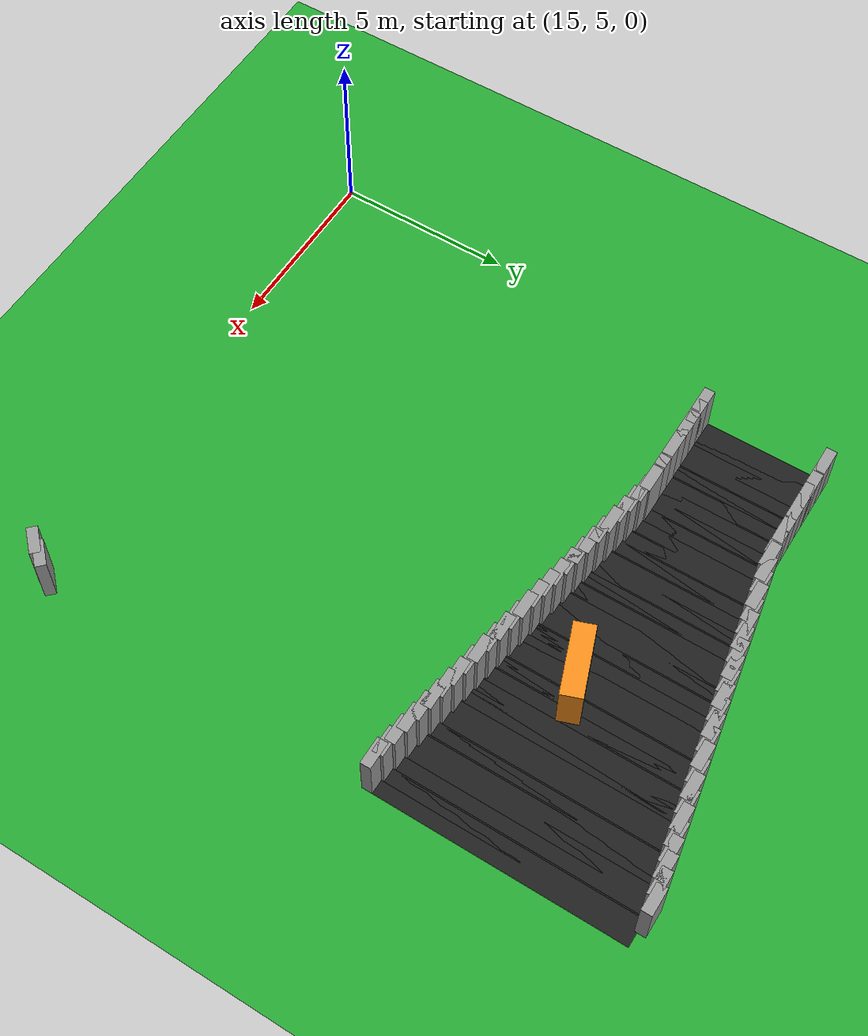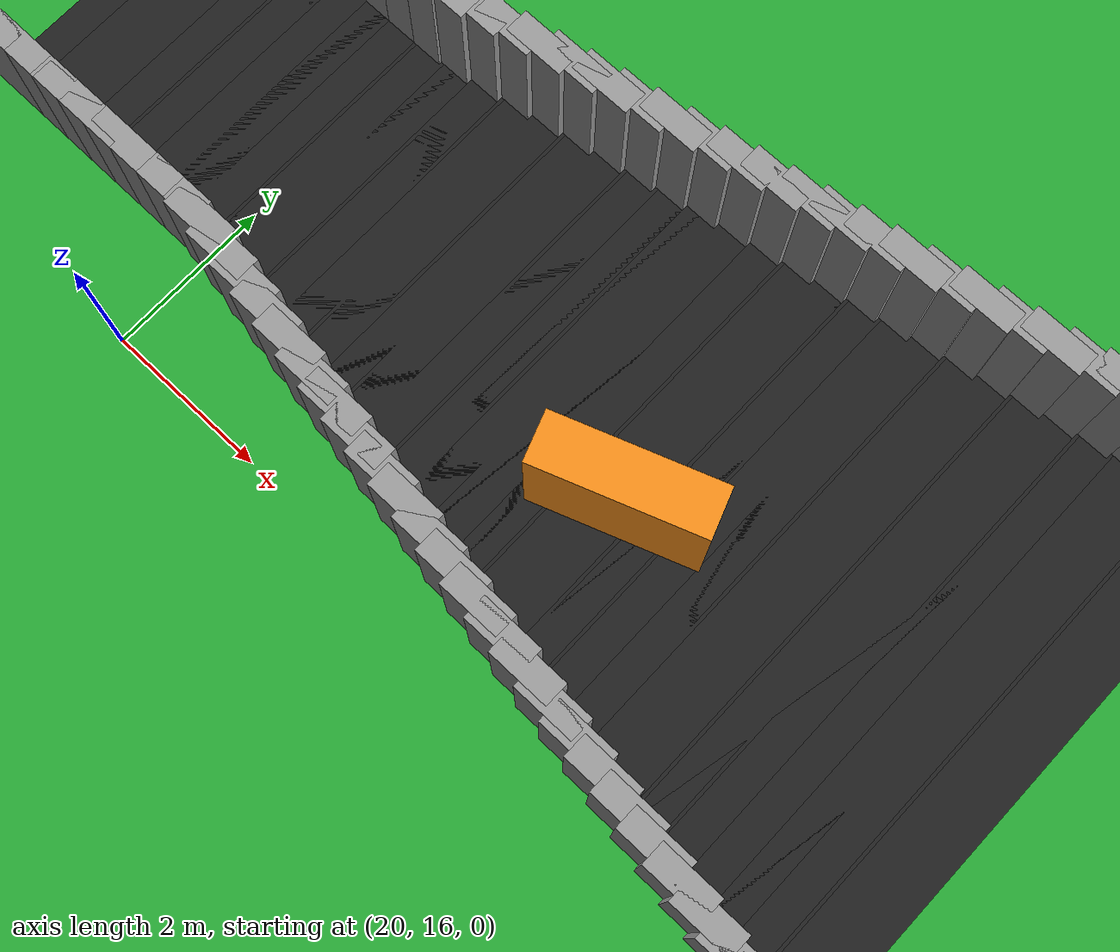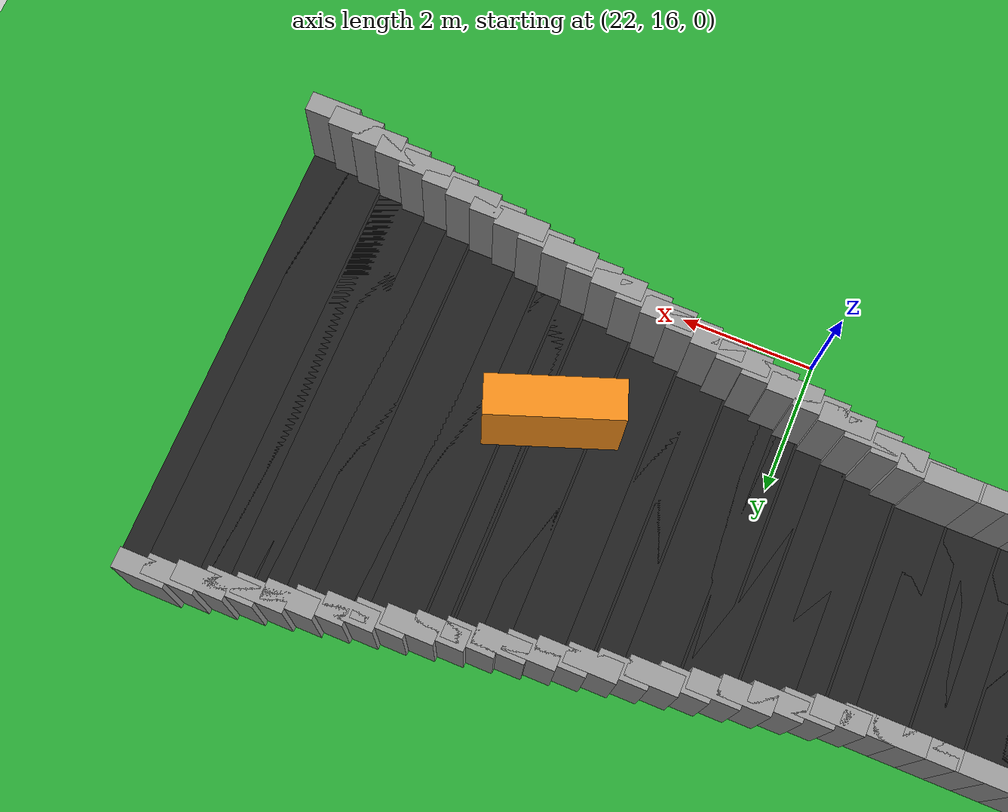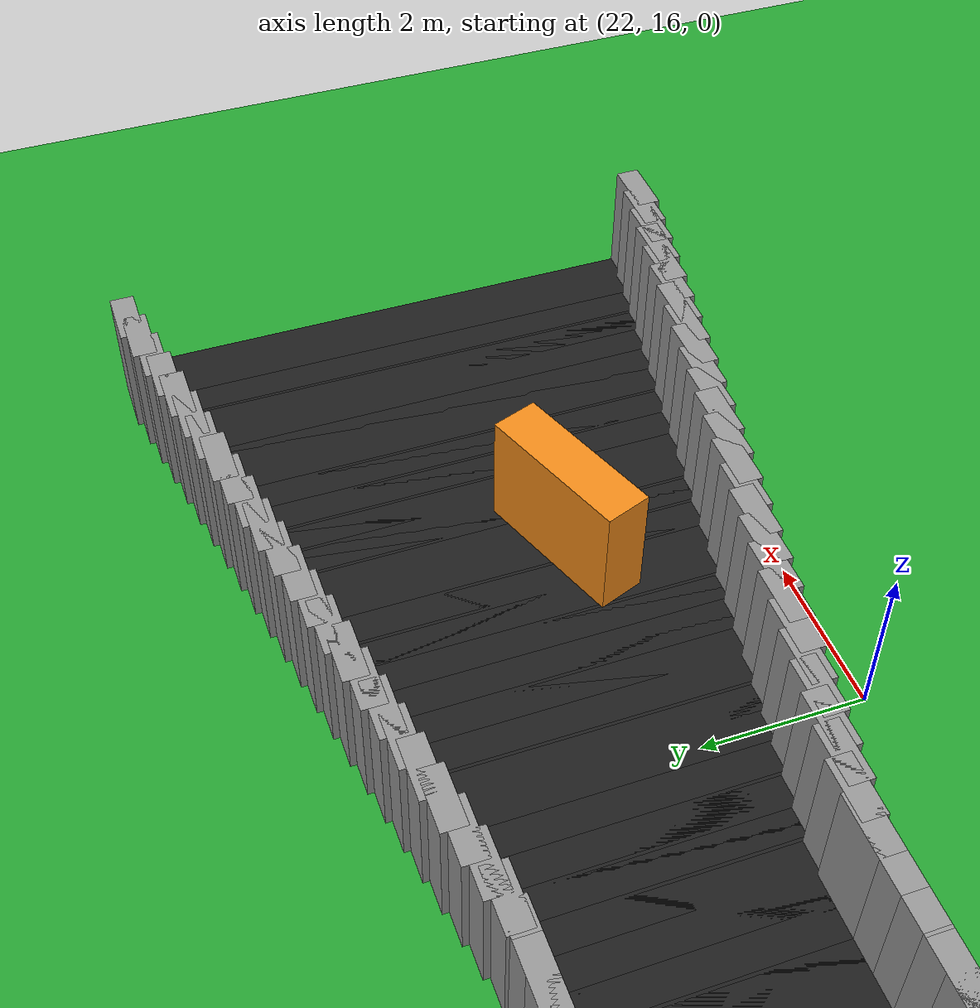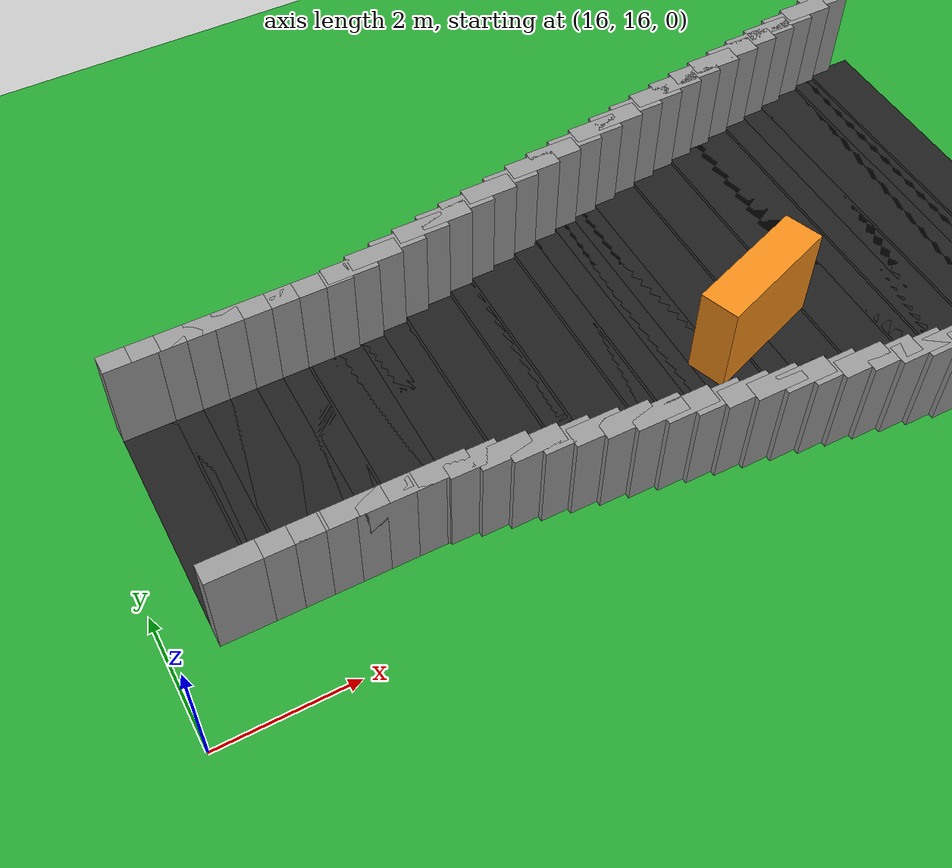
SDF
<sdf version="1.6">
 <world name="obstacle_taper">
  <include><uri>model://sun</uri></include>
  <model name="ground_plane">
   <static>true</static>
   <link name="link">
    <collision name="collision">
     <surface><friction><ode><mu>100</mu><mu2>50</mu2></ode></friction></surface>
     <geometry><plane><normal>0 0 1</normal><size>120 120</size></plane></geometry>
    </collision>
    <visual name="visual">
     <geometry><plane><normal>0 0 1</normal><size>120 120</size></plane></geometry>
     <material>
      <script><uri>file://media/materials/scripts/gazebo.material</uri><name>Gazebo/Green</name></script>
     </material>
    </visual>
   </link>
  </model>
  <model name="curbL_80">
   <static>true</static>
   <pose>29.575 5.274 0.750 0 0 0.78540</pose>
   <link name="link">
    <collision name="collision"><geometry><box><size>0.760 0.300 1.500</size></box></geometry></collision>
    <visual name="visual">
     <geometry><box><size>0.760 0.300 1.500</size></box></geometry>
     <material>
      <script><uri>file://media/materials/scripts/gazebo.material</uri><name>Gazebo/Grey</name></script>
     </material>
    </visual>
   </link>
  </model>
  <model name="curbL_81">
   <static>true</static>
   <pose>29.795 5.620 0.750 0 0 0.78540</pose>
   <link name="link">
    <collision name="collision"><geometry><box><size>0.760 0.300 1.500</size></box></geometry></collision>
    <visual name="visual">
     <geometry><box><size>0.760 0.300 1.500</size></box></geometry>
     <material>
      <script><uri>file://media/materials/scripts/gazebo.material</uri><name>Gazebo/Grey</name></script>
     </material>
    </visual>
   </link>
  </model>
  <model name="asphalt_143">
   <static>true</static>
   <pose>29.820 19.124 0.005 0 0 3.14159</pose>
   <link name="link">
    <visual name="visual">
     <geometry><box><size>0.760 6.922 0.010</size></box></geometry>
     <material>
      <script><uri>file://media/materials/scripts/gazebo.material</uri><name>Gazebo/Black</name></script>
     </material>
    </visual>
   </link>
  </model>
  <model name="curbL_143">
   <static>true</static>
   <pose>29.820 15.513 0.750 0 0 3.14159</pose>
   <link name="link">
    <collision name="collision"><geometry><box><size>0.760 0.300 1.500</size></box></geometry></collision>
    <visual name="visual">
     <geometry><box><size>0.760 0.300 1.500</size></box></geometry>
     <material>
      <script><uri>file://media/materials/scripts/gazebo.material</uri><name>Gazebo/Grey</name></script>
     </material>
    </visual>
   </link>
  </model>
  <model name="asphalt_144">
   <static>true</static>
   <pose>29.420 19.124 0.005 0 0 3.14159</pose>
   <link name="link">
    <visual name="visual">
     <geometry><box><size>0.760 6.770 0.010</size></box></geometry>
     <material>
      <script><uri>file://media/materials/scripts/gazebo.material</uri><name>Gazebo/Black</name></script>
     </material>
    </visual>
   </link>
  </model>
  <model name="curbL_144">
   <static>true</static>
   <pose>29.420 15.589 0.750 0 0 3.14159</pose>
   <link name="link">
    <collision name="collision"><geometry><box><size>0.760 0.300 1.500</size></box></geometry></collision>
    <visual name="visual">
     <geometry><box><size>0.760 0.300 1.500</size></box></geometry>
     <material>
      <script><uri>file://media/materials/scripts/gazebo.material</uri><name>Gazebo/Grey</name></script>
     </material>
    </visual>
   </link>
  </model>
  <model name="curbR_144">
   <static>true</static>
   <pose>29.420 22.659 0.750 0 0 3.14159</pose>
   <link name="link">
    <collision name="collision"><geometry><box><size>0.760 0.300 1.500</size></box></geometry></collision>
    <visual name="visual">
     <geometry><box><size>0.760 0.300 1.500</size></box></geometry>
     <material>
      <script><uri>file://media/materials/scripts/gazebo.material</uri><name>Gazebo/Grey</name></script>
     </material>
    </visual>
   </link>
  </model>
  <model name="asphalt_145">
   <static>true</static>
   <pose>29.020 19.124 0.005 0 0 3.14159</pose>
   <link name="link">
    <visual name="visual">
     <geometry><box><size>0.760 6.618 0.010</size></box></geometry>
     <material>
      <script><uri>file://media/materials/scripts/gazebo.material</uri><name>Gazebo/Black</name></script>
     </material>
    </visual>
   </link>
  </model>
  <model name="curbL_145">
   <static>true</static>
   <pose>29.020 15.665 0.750 0 0 3.14159</pose>
   <link name="link">
    <collision name="collision"><geometry><box><size>0.760 0.300 1.500</size></box></geometry></collision>
    <visual name="visual">
     <geometry><box><size>0.760 0.300 1.500</size></box></geometry>
     <material>
      <script><uri>file://media/materials/scripts/gazebo.material</uri><name>Gazebo/Grey</name></script>
     </material>
    </visual>
   </link>
  </model>
  <model name="curbR_145">
   <static>true</static>
   <pose>29.020 22.583 0.750 0 0 3.14159</pose>
   <link name="link">
    <collision name="collision"><geometry><box><size>0.760 0.300 1.500</size></box></geometry></collision>
    <visual name="visual">
     <geometry><box><size>0.760 0.300 1.500</size></box></geometry>
     <material>
      <script><uri>file://media/materials/scripts/gazebo.material</uri><name>Gazebo/Grey</name></script>
     </material>
    </visual>
   </link>
  </model>
  <model name="asphalt_146">
   <static>true</static>
   <pose>28.620 19.124 0.005 0 0 3.14159</pose>
   <link name="link">
    <visual name="visual">
     <geometry><box><size>0.760 6.466 0.010</size></box></geometry>
     <material>
      <script><uri>file://media/materials/scripts/gazebo.material</uri><name>Gazebo/Black</name></script>
     </material>
    </visual>
   </link>
  </model>
  <model name="curbL_146">
   <static>true</static>
   <pose>28.620 15.741 0.750 0 0 3.14159</pose>
   <link name="link">
    <collision name="collision"><geometry><box><size>0.760 0.300 1.500</size></box></geometry></collision>
    <visual name="visual">
     <geometry><box><size>0.760 0.300 1.500</size></box></geometry>
     <material>
      <script><uri>file://media/materials/scripts/gazebo.material</uri><name>Gazebo/Grey</name></script>
     </material>
    </visual>
   </link>
  </model>
  <model name="curbR_146">
   <static>true</static>
   <pose>28.620 22.507 0.750 0 0 3.14159</pose>
   <link name="link">
    <collision name="collision"><geometry><box><size>0.760 0.300 1.500</size></box></geometry></collision>
    <visual name="visual">
     <geometry><box><size>0.760 0.300 1.500</size></box></geometry>
     <material>
      <script><uri>file://media/materials/scripts/gazebo.material</uri><name>Gazebo/Grey</name></script>
     </material>
    </visual>
   </link>
  </model>
  <model name="asphalt_147">
   <static>true</static>
   <pose>28.220 19.124 0.005 0 0 3.14159</pose>
   <link name="link">
    <visual name="visual">
     <geometry><box><size>0.760 6.314 0.010</size></box></geometry>
     <material>
      <script><uri>file://media/materials/scripts/gazebo.material</uri><name>Gazebo/Black</name></script>
     </material>
    </visual>
   </link>
  </model>
  <model name="curbL_147">
   <static>true</static>
   <pose>28.220 15.817 0.750 0 0 3.14159</pose>
   <link name="link">
    <collision name="collision"><geometry><box><size>0.760 0.300 1.500</size></box></geometry></collision>
    <visual name="visual">
     <geometry><box><size>0.760 0.300 1.500</size></box></geometry>
     <material>
      <script><uri>file://media/materials/scripts/gazebo.material</uri><name>Gazebo/Grey</name></script>
     </material>
    </visual>
   </link>
  </model>
  <model name="curbR_147">
   <static>true</static>
   <pose>28.220 22.431 0.750 0 0 3.14159</pose>
   <link name="link">
    <collision name="collision"><geometry><box><size>0.760 0.300 1.500</size></box></geometry></collision>
    <visual name="visual">
     <geometry><box><size>0.760 0.300 1.500</size></box></geometry>
     <material>
      <script><uri>file://media/materials/scripts/gazebo.material</uri><name>Gazebo/Grey</name></script>
     </material>
    </visual>
   </link>
  </model>
  <model name="asphalt_148">
   <static>true</static>
   <pose>27.820 19.124 0.005 0 0 3.14159</pose>
   <link name="link">
    <visual name="visual">
     <geometry><box><size>0.760 6.162 0.010</size></box></geometry>
     <material>
      <script><uri>file://media/materials/scripts/gazebo.material</uri><name>Gazebo/Black</name></script>
     </material>
    </visual>
   </link>
  </model>
  <model name="curbL_148">
   <static>true</static>
   <pose>27.820 15.893 0.750 0 0 3.14159</pose>
   <link name="link">
    <collision name="collision"><geometry><box><size>0.760 0.300 1.500</size></box></geometry></collision>
    <visual name="visual">
     <geometry><box><size>0.760 0.300 1.500</size></box></geometry>
     <material>
      <script><uri>file://media/materials/scripts/gazebo.material</uri><name>Gazebo/Grey</name></script>
     </material>
    </visual>
   </link>
  </model>
  <model name="curbR_148">
   <static>true</static>
   <pose>27.820 22.355 0.750 0 0 3.14159</pose>
   <link name="link">
    <collision name="collision"><geometry><box><size>0.760 0.300 1.500</size></box></geometry></collision>
    <visual name="visual">
     <geometry><box><size>0.760 0.300 1.500</size></box></geometry>
     <material>
      <script><uri>file://media/materials/scripts/gazebo.material</uri><name>Gazebo/Grey</name></script>
     </material>
    </visual>
   </link>
  </model>
  <model name="asphalt_149">
   <static>true</static>
   <pose>27.420 19.124 0.005 0 0 3.14159</pose>
   <link name="link">
    <visual name="visual">
     <geometry><box><size>0.760 6.010 0.010</size></box></geometry>
     <material>
      <script><uri>file://media/materials/scripts/gazebo.material</uri><name>Gazebo/Black</name></script>
     </material>
    </visual>
   </link>
  </model>
  <model name="curbL_149">
   <static>true</static>
   <pose>27.420 15.969 0.750 0 0 3.14159</pose>
   <link name="link">
    <collision name="collision"><geometry><box><size>0.760 0.300 1.500</size></box></geometry></collision>
    <visual name="visual">
     <geometry><box><size>0.760 0.300 1.500</size></box></geometry>
     <material>
      <script><uri>file://media/materials/scripts/gazebo.material</uri><name>Gazebo/Grey</name></script>
     </material>
    </visual>
   </link>
  </model>
  <model name="curbR_149">
   <static>true</static>
   <pose>27.420 22.279 0.750 0 0 3.14159</pose>
   <link name="link">
    <collision name="collision"><geometry><box><size>0.760 0.300 1.500</size></box></geometry></collision>
    <visual name="visual">
     <geometry><box><size>0.760 0.300 1.500</size></box></geometry>
     <material>
      <script><uri>file://media/materials/scripts/gazebo.material</uri><name>Gazebo/Grey</name></script>
     </material>
    </visual>
   </link>
  </model>
  <model name="asphalt_150">
   <static>true</static>
   <pose>27.020 19.124 0.005 0 0 3.14159</pose>
   <link name="link">
    <visual name="visual">
     <geometry><box><size>0.760 5.858 0.010</size></box></geometry>
     <material>
      <script><uri>file://media/materials/scripts/gazebo.material</uri><name>Gazebo/Black</name></script>
     </material>
    </visual>
   </link>
  </model>
  <model name="curbL_150">
   <static>true</static>
   <pose>27.020 16.045 0.750 0 0 3.14159</pose>
   <link name="link">
    <collision name="collision"><geometry><box><size>0.760 0.300 1.500</size></box></geometry></collision>
    <visual name="visual">
     <geometry><box><size>0.760 0.300 1.500</size></box></geometry>
     <material>
      <script><uri>file://media/materials/scripts/gazebo.material</uri><name>Gazebo/Grey</name></script>
     </material>
    </visual>
   </link>
  </model>
  <model name="curbR_150">
   <static>true</static>
   <pose>27.020 22.203 0.750 0 0 3.14159</pose>
   <link name="link">
    <collision name="collision"><geometry><box><size>0.760 0.300 1.500</size></box></geometry></collision>
    <visual name="visual">
     <geometry><box><size>0.760 0.300 1.500</size></box></geometry>
     <material>
      <script><uri>file://media/materials/scripts/gazebo.material</uri><name>Gazebo/Grey</name></script>
     </material>
    </visual>
   </link>
  </model>
  <model name="asphalt_151">
   <static>true</static>
   <pose>26.620 19.124 0.005 0 0 3.14159</pose>
   <link name="link">
    <visual name="visual">
     <geometry><box><size>0.760 5.706 0.010</size></box></geometry>
     <material>
      <script><uri>file://media/materials/scripts/gazebo.material</uri><name>Gazebo/Black</name></script>
     </material>
    </visual>
   </link>
  </model>
  <model name="curbL_151">
   <static>true</static>
   <pose>26.620 16.121 0.750 0 0 3.14159</pose>
   <link name="link">
    <collision name="collision"><geometry><box><size>0.760 0.300 1.500</size></box></geometry></collision>
    <visual name="visual">
     <geometry><box><size>0.760 0.300 1.500</size></box></geometry>
     <material>
      <script><uri>file://media/materials/scripts/gazebo.material</uri><name>Gazebo/Grey</name></script>
     </material>
    </visual>
   </link>
  </model>
  <model name="curbR_151">
   <static>true</static>
   <pose>26.620 22.127 0.750 0 0 3.14159</pose>
   <link name="link">
    <collision name="collision"><geometry><box><size>0.760 0.300 1.500</size></box></geometry></collision>
    <visual name="visual">
     <geometry><box><size>0.760 0.300 1.500</size></box></geometry>
     <material>
      <script><uri>file://media/materials/scripts/gazebo.material</uri><name>Gazebo/Grey</name></script>
     </material>
    </visual>
   </link>
  </model>
  <model name="asphalt_152">
   <static>true</static>
   <pose>26.220 19.124 0.005 0 0 3.14159</pose>
   <link name="link">
    <visual name="visual">
     <geometry><box><size>0.760 5.554 0.010</size></box></geometry>
     <material>
      <script><uri>file://media/materials/scripts/gazebo.material</uri><name>Gazebo/Black</name></script>
     </material>
    </visual>
   </link>
  </model>
  <model name="curbL_152">
   <static>true</static>
   <pose>26.220 16.197 0.750 0 0 3.14159</pose>
   <link name="link">
    <collision name="collision"><geometry><box><size>0.760 0.300 1.500</size></box></geometry></collision>
    <visual name="visual">
     <geometry><box><size>0.760 0.300 1.500</size></box></geometry>
     <material>
      <script><uri>file://media/materials/scripts/gazebo.material</uri><name>Gazebo/Grey</name></script>
     </material>
    </visual>
   </link>
  </model>
  <model name="curbR_152">
   <static>true</static>
   <pose>26.220 22.051 0.750 0 0 3.14159</pose>
   <link name="link">
    <collision name="collision"><geometry><box><size>0.760 0.300 1.500</size></box></geometry></collision>
    <visual name="visual">
     <geometry><box><size>0.760 0.300 1.500</size></box></geometry>
     <material>
      <script><uri>file://media/materials/scripts/gazebo.material</uri><name>Gazebo/Grey</name></script>
     </material>
    </visual>
   </link>
  </model>
  <model name="asphalt_153">
   <static>true</static>
   <pose>25.820 19.124 0.005 0 0 3.14159</pose>
   <link name="link">
    <visual name="visual">
     <geometry><box><size>0.760 5.402 0.010</size></box></geometry>
     <material>
      <script><uri>file://media/materials/scripts/gazebo.material</uri><name>Gazebo/Black</name></script>
     </material>
    </visual>
   </link>
  </model>
  <model name="curbL_153">
   <static>true</static>
   <pose>25.820 16.273 0.750 0 0 3.14159</pose>
   <link name="link">
    <collision name="collision"><geometry><box><size>0.760 0.300 1.500</size></box></geometry></collision>
    <visual name="visual">
     <geometry><box><size>0.760 0.300 1.500</size></box></geometry>
     <material>
      <script><uri>file://media/materials/scripts/gazebo.material</uri><name>Gazebo/Grey</name></script>
     </material>
    </visual>
   </link>
  </model>
  <model name="curbR_153">
   <static>true</static>
   <pose>25.820 21.975 0.750 0 0 3.14159</pose>
   <link name="link">
    <collision name="collision"><geometry><box><size>0.760 0.300 1.500</size></box></geometry></collision>
    <visual name="visual">
     <geometry><box><size>0.760 0.300 1.500</size></box></geometry>
     <material>
      <script><uri>file://media/materials/scripts/gazebo.material</uri><name>Gazebo/Grey</name></script>
     </material>
    </visual>
   </link>
  </model>
  <model name="asphalt_154">
   <static>true</static>
   <pose>25.420 19.124 0.005 0 0 3.14159</pose>
   <link name="link">
    <visual name="visual">
     <geometry><box><size>0.760 5.250 0.010</size></box></geometry>
     <material>
      <script><uri>file://media/materials/scripts/gazebo.material</uri><name>Gazebo/Black</name></script>
     </material>
    </visual>
   </link>
  </model>
  <model name="curbL_154">
   <static>true</static>
   <pose>25.420 16.349 0.750 0 0 3.14159</pose>
   <link name="link">
    <collision name="collision"><geometry><box><size>0.760 0.300 1.500</size></box></geometry></collision>
    <visual name="visual">
     <geometry><box><size>0.760 0.300 1.500</size></box></geometry>
     <material>
      <script><uri>file://media/materials/scripts/gazebo.material</uri><name>Gazebo/Grey</name></script>
     </material>
    </visual>
   </link>
  </model>
  <model name="curbR_154">
   <static>true</static>
   <pose>25.420 21.899 0.750 0 0 3.14159</pose>
   <link name="link">
    <collision name="collision"><geometry><box><size>0.760 0.300 1.500</size></box></geometry></collision>
    <visual name="visual">
     <geometry><box><size>0.760 0.300 1.500</size></box></geometry>
     <material>
      <script><uri>file://media/materials/scripts/gazebo.material</uri><name>Gazebo/Grey</name></script>
     </material>
    </visual>
   </link>
  </model>
  <model name="asphalt_155">
   <static>true</static>
   <pose>25.020 19.124 0.005 0 0 3.14159</pose>
   <link name="link">
    <visual name="visual">
     <geometry><box><size>0.760 5.098 0.010</size></box></geometry>
     <material>
      <script><uri>file://media/materials/scripts/gazebo.material</uri><name>Gazebo/Black</name></script>
     </material>
    </visual>
   </link>
  </model>
  <model name="curbL_155">
   <static>true</static>
   <pose>25.020 16.425 0.750 0 0 3.14159</pose>
   <link name="link">
    <collision name="collision"><geometry><box><size>0.760 0.300 1.500</size></box></geometry></collision>
    <visual name="visual">
     <geometry><box><size>0.760 0.300 1.500</size></box></geometry>
     <material>
      <script><uri>file://media/materials/scripts/gazebo.material</uri><name>Gazebo/Grey</name></script>
     </material>
    </visual>
   </link>
  </model>
  <model name="curbR_155">
   <static>true</static>
   <pose>25.020 21.823 0.750 0 0 3.14159</pose>
   <link name="link">
    <collision name="collision"><geometry><box><size>0.760 0.300 1.500</size></box></geometry></collision>
    <visual name="visual">
     <geometry><box><size>0.760 0.300 1.500</size></box></geometry>
     <material>
      <script><uri>file://media/materials/scripts/gazebo.material</uri><name>Gazebo/Grey</name></script>
     </material>
    </visual>
   </link>
  </model>
  <model name="asphalt_156">
   <static>true</static>
   <pose>24.620 19.124 0.005 0 0 3.14159</pose>
   <link name="link">
    <visual name="visual">
     <geometry><box><size>0.760 4.946 0.010</size></box></geometry>
     <material>
      <script><uri>file://media/materials/scripts/gazebo.material</uri><name>Gazebo/Black</name></script>
     </material>
    </visual>
   </link>
  </model>
  <model name="curbL_156">
   <static>true</static>
   <pose>24.620 16.501 0.750 0 0 3.14159</pose>
   <link name="link">
    <collision name="collision"><geometry><box><size>0.760 0.300 1.500</size></box></geometry></collision>
    <visual name="visual">
     <geometry><box><size>0.760 0.300 1.500</size></box></geometry>
     <material>
      <script><uri>file://media/materials/scripts/gazebo.material</uri><name>Gazebo/Grey</name></script>
     </material>
    </visual>
   </link>
  </model>
  <model name="curbR_156">
   <static>true</static>
   <pose>24.620 21.747 0.750 0 0 3.14159</pose>
   <link name="link">
    <collision name="collision"><geometry><box><size>0.760 0.300 1.500</size></box></geometry></collision>
    <visual name="visual">
     <geometry><box><size>0.760 0.300 1.500</size></box></geometry>
     <material>
      <script><uri>file://media/materials/scripts/gazebo.material</uri><name>Gazebo/Grey</name></script>
     </material>
    </visual>
   </link>
  </model>
  <model name="asphalt_157">
   <static>true</static>
   <pose>24.220 19.124 0.005 0 0 3.14159</pose>
   <link name="link">
    <visual name="visual">
     <geometry><box><size>0.760 4.794 0.010</size></box></geometry>
     <material>
      <script><uri>file://media/materials/scripts/gazebo.material</uri><name>Gazebo/Black</name></script>
     </material>
    </visual>
   </link>
  </model>
  <model name="curbL_157">
   <static>true</static>
   <pose>24.220 16.577 0.750 0 0 3.14159</pose>
   <link name="link">
    <collision name="collision"><geometry><box><size>0.760 0.300 1.500</size></box></geometry></collision>
    <visual name="visual">
     <geometry><box><size>0.760 0.300 1.500</size></box></geometry>
     <material>
      <script><uri>file://media/materials/scripts/gazebo.material</uri><name>Gazebo/Grey</name></script>
     </material>
    </visual>
   </link>
  </model>
  <model name="curbR_157">
   <static>true</static>
   <pose>24.220 21.671 0.750 0 0 3.14159</pose>
   <link name="link">
    <collision name="collision"><geometry><box><size>0.760 0.300 1.500</size></box></geometry></collision>
    <visual name="visual">
     <geometry><box><size>0.760 0.300 1.500</size></box></geometry>
     <material>
      <script><uri>file://media/materials/scripts/gazebo.material</uri><name>Gazebo/Grey</name></script>
     </material>
    </visual>
   </link>
  </model>
  <model name="asphalt_158">
   <static>true</static>
   <pose>23.820 19.124 0.005 0 0 3.14159</pose>
   <link name="link">
    <visual name="visual">
     <geometry><box><size>0.760 4.642 0.010</size></box></geometry>
     <material>
      <script><uri>file://media/materials/scripts/gazebo.material</uri><name>Gazebo/Black</name></script>
     </material>
    </visual>
   </link>
  </model>
  <model name="curbL_158">
   <static>true</static>
   <pose>23.820 16.653 0.750 0 0 3.14159</pose>
   <link name="link">
    <collision name="collision"><geometry><box><size>0.760 0.300 1.500</size></box></geometry></collision>
    <visual name="visual">
     <geometry><box><size>0.760 0.300 1.500</size></box></geometry>
     <material>
      <script><uri>file://media/materials/scripts/gazebo.material</uri><name>Gazebo/Grey</name></script>
     </material>
    </visual>
   </link>
  </model>
  <model name="curbR_158">
   <static>true</static>
   <pose>23.820 21.595 0.750 0 0 3.14159</pose>
   <link name="link">
    <collision name="collision"><geometry><box><size>0.760 0.300 1.500</size></box></geometry></collision>
    <visual name="visual">
     <geometry><box><size>0.760 0.300 1.500</size></box></geometry>
     <material>
      <script><uri>file://media/materials/scripts/gazebo.material</uri><name>Gazebo/Grey</name></script>
     </material>
    </visual>
   </link>
  </model>
  <model name="asphalt_159">
   <static>true</static>
   <pose>23.420 19.124 0.005 0 0 3.14159</pose>
   <link name="link">
    <visual name="visual">
     <geometry><box><size>0.760 4.490 0.010</size></box></geometry>
     <material>
      <script><uri>file://media/materials/scripts/gazebo.material</uri><name>Gazebo/Black</name></script>
     </material>
    </visual>
   </link>
  </model>
  <model name="curbL_159">
   <static>true</static>
   <pose>23.420 16.729 0.750 0 0 3.14159</pose>
   <link name="link">
    <collision name="collision"><geometry><box><size>0.760 0.300 1.500</size></box></geometry></collision>
    <visual name="visual">
     <geometry><box><size>0.760 0.300 1.500</size></box></geometry>
     <material>
      <script><uri>file://media/materials/scripts/gazebo.material</uri><name>Gazebo/Grey</name></script>
     </material>
    </visual>
   </link>
  </model>
  <model name="curbR_159">
   <static>true</static>
   <pose>23.420 21.519 0.750 0 0 3.14159</pose>
   <link name="link">
    <collision name="collision"><geometry><box><size>0.760 0.300 1.500</size></box></geometry></collision>
    <visual name="visual">
     <geometry><box><size>0.760 0.300 1.500</size></box></geometry>
     <material>
      <script><uri>file://media/materials/scripts/gazebo.material</uri><name>Gazebo/Grey</name></script>
     </material>
    </visual>
   </link>
  </model>
  <model name="asphalt_160">
   <static>true</static>
   <pose>23.020 19.124 0.005 0 0 3.14159</pose>
   <link name="link">
    <visual name="visual">
     <geometry><box><size>0.760 4.338 0.010</size></box></geometry>
     <material>
      <script><uri>file://media/materials/scripts/gazebo.material</uri><name>Gazebo/Black</name></script>
     </material>
    </visual>
   </link>
  </model>
  <model name="curbL_160">
   <static>true</static>
   <pose>23.020 16.805 0.750 0 0 3.14159</pose>
   <link name="link">
    <collision name="collision"><geometry><box><size>0.760 0.300 1.500</size></box></geometry></collision>
    <visual name="visual">
     <geometry><box><size>0.760 0.300 1.500</size></box></geometry>
     <material>
      <script><uri>file://media/materials/scripts/gazebo.material</uri><name>Gazebo/Grey</name></script>
     </material>
    </visual>
   </link>
  </model>
  <model name="curbR_160">
   <static>true</static>
   <pose>23.020 21.443 0.750 0 0 3.14159</pose>
   <link name="link">
    <collision name="collision"><geometry><box><size>0.760 0.300 1.500</size></box></geometry></collision>
    <visual name="visual">
     <geometry><box><size>0.760 0.300 1.500</size></box></geometry>
     <material>
      <script><uri>file://media/materials/scripts/gazebo.material</uri><name>Gazebo/Grey</name></script>
     </material>
    </visual>
   </link>
  </model>
  <model name="asphalt_161">
   <static>true</static>
   <pose>22.620 19.124 0.005 0 0 3.14159</pose>
   <link name="link">
    <visual name="visual">
     <geometry><box><size>0.760 4.186 0.010</size></box></geometry>
     <material>
      <script><uri>file://media/materials/scripts/gazebo.material</uri><name>Gazebo/Black</name></script>
     </material>
    </visual>
   </link>
  </model>
  <model name="curbL_161">
   <static>true</static>
   <pose>22.620 16.881 0.750 0 0 3.14159</pose>
   <link name="link">
    <collision name="collision"><geometry><box><size>0.760 0.300 1.500</size></box></geometry></collision>
    <visual name="visual">
     <geometry><box><size>0.760 0.300 1.500</size></box></geometry>
     <material>
      <script><uri>file://media/materials/scripts/gazebo.material</uri><name>Gazebo/Grey</name></script>
     </material>
    </visual>
   </link>
  </model>
  <model name="curbR_161">
   <static>true</static>
   <pose>22.620 21.367 0.750 0 0 3.14159</pose>
   <link name="link">
    <collision name="collision"><geometry><box><size>0.760 0.300 1.500</size></box></geometry></collision>
    <visual name="visual">
     <geometry><box><size>0.760 0.300 1.500</size></box></geometry>
     <material>
      <script><uri>file://media/materials/scripts/gazebo.material</uri><name>Gazebo/Grey</name></script>
     </material>
    </visual>
   </link>
  </model>
  <model name="asphalt_162">
   <static>true</static>
   <pose>22.220 19.124 0.005 0 0 3.14159</pose>
   <link name="link">
    <visual name="visual">
     <geometry><box><size>0.760 4.034 0.010</size></box></geometry>
     <material>
      <script><uri>file://media/materials/scripts/gazebo.material</uri><name>Gazebo/Black</name></script>
     </material>
    </visual>
   </link>
  </model>
  <model name="curbL_162">
   <static>true</static>
   <pose>22.220 16.957 0.750 0 0 3.14159</pose>
   <link name="link">
    <collision name="collision"><geometry><box><size>0.760 0.300 1.500</size></box></geometry></collision>
    <visual name="visual">
     <geometry><box><size>0.760 0.300 1.500</size></box></geometry>
     <material>
      <script><uri>file://media/materials/scripts/gazebo.material</uri><name>Gazebo/Grey</name></script>
     </material>
    </visual>
   </link>
  </model>
  <model name="curbR_162">
   <static>true</static>
   <pose>22.220 21.291 0.750 0 0 3.14159</pose>
   <link name="link">
    <collision name="collision"><geometry><box><size>0.760 0.300 1.500</size></box></geometry></collision>
    <visual name="visual">
     <geometry><box><size>0.760 0.300 1.500</size></box></geometry>
     <material>
      <script><uri>file://media/materials/scripts/gazebo.material</uri><name>Gazebo/Grey</name></script>
     </material>
    </visual>
   </link>
  </model>
  <model name="asphalt_163">
   <static>true</static>
   <pose>21.820 19.124 0.005 0 0 3.14159</pose>
   <link name="link">
    <visual name="visual">
     <geometry><box><size>0.760 3.882 0.010</size></box></geometry>
     <material>
      <script><uri>file://media/materials/scripts/gazebo.material</uri><name>Gazebo/Black</name></script>
     </material>
    </visual>
   </link>
  </model>
  <model name="curbL_163">
   <static>true</static>
   <pose>21.820 17.033 0.750 0 0 3.14159</pose>
   <link name="link">
    <collision name="collision"><geometry><box><size>0.760 0.300 1.500</size></box></geometry></collision>
    <visual name="visual">
     <geometry><box><size>0.760 0.300 1.500</size></box></geometry>
     <material>
      <script><uri>file://media/materials/scripts/gazebo.material</uri><name>Gazebo/Grey</name></script>
     </material>
    </visual>
   </link>
  </model>
  <model name="curbR_163">
   <static>true</static>
   <pose>21.820 21.215 0.750 0 0 3.14159</pose>
   <link name="link">
    <collision name="collision"><geometry><box><size>0.760 0.300 1.500</size></box></geometry></collision>
    <visual name="visual">
     <geometry><box><size>0.760 0.300 1.500</size></box></geometry>
     <material>
      <script><uri>file://media/materials/scripts/gazebo.material</uri><name>Gazebo/Grey</name></script>
     </material>
    </visual>
   </link>
  </model>
  <model name="asphalt_164">
   <static>true</static>
   <pose>21.420 19.124 0.005 0 0 3.14159</pose>
   <link name="link">
    <visual name="visual">
     <geometry><box><size>0.760 3.730 0.010</size></box></geometry>
     <material>
      <script><uri>file://media/materials/scripts/gazebo.material</uri><name>Gazebo/Black</name></script>
     </material>
    </visual>
   </link>
  </model>
  <model name="curbL_164">
   <static>true</static>
   <pose>21.420 17.109 0.750 0 0 3.14159</pose>
   <link name="link">
    <collision name="collision"><geometry><box><size>0.760 0.300 1.500</size></box></geometry></collision>
    <visual name="visual">
     <geometry><box><size>0.760 0.300 1.500</size></box></geometry>
     <material>
      <script><uri>file://media/materials/scripts/gazebo.material</uri><name>Gazebo/Grey</name></script>
     </material>
    </visual>
   </link>
  </model>
  <model name="curbR_164">
   <static>true</static>
   <pose>21.420 21.139 0.750 0 0 3.14159</pose>
   <link name="link">
    <collision name="collision"><geometry><box><size>0.760 0.300 1.500</size></box></geometry></collision>
    <visual name="visual">
     <geometry><box><size>0.760 0.300 1.500</size></box></geometry>
     <material>
      <script><uri>file://media/materials/scripts/gazebo.material</uri><name>Gazebo/Grey</name></script>
     </material>
    </visual>
   </link>
  </model>
  <model name="asphalt_165">
   <static>true</static>
   <pose>21.020 19.124 0.005 0 0 3.14159</pose>
   <link name="link">
    <visual name="visual">
     <geometry><box><size>0.760 3.578 0.010</size></box></geometry>
     <material>
      <script><uri>file://media/materials/scripts/gazebo.material</uri><name>Gazebo/Black</name></script>
     </material>
    </visual>
   </link>
  </model>
  <model name="curbL_165">
   <static>true</static>
   <pose>21.020 17.185 0.750 0 0 3.14159</pose>
   <link name="link">
    <collision name="collision"><geometry><box><size>0.760 0.300 1.500</size></box></geometry></collision>
    <visual name="visual">
     <geometry><box><size>0.760 0.300 1.500</size></box></geometry>
     <material>
      <script><uri>file://media/materials/scripts/gazebo.material</uri><name>Gazebo/Grey</name></script>
     </material>
    </visual>
   </link>
  </model>
  <model name="curbR_165">
   <static>true</static>
   <pose>21.020 21.063 0.750 0 0 3.14159</pose>
   <link name="link">
    <collision name="collision"><geometry><box><size>0.760 0.300 1.500</size></box></geometry></collision>
    <visual name="visual">
     <geometry><box><size>0.760 0.300 1.500</size></box></geometry>
     <material>
      <script><uri>file://media/materials/scripts/gazebo.material</uri><name>Gazebo/Grey</name></script>
     </material>
    </visual>
   </link>
  </model>
  <model name="asphalt_166">
   <static>true</static>
   <pose>20.620 19.124 0.005 0 0 3.14159</pose>
   <link name="link">
    <visual name="visual">
     <geometry><box><size>0.760 3.426 0.010</size></box></geometry>
     <material>
      <script><uri>file://media/materials/scripts/gazebo.material</uri><name>Gazebo/Black</name></script>
     </material>
    </visual>
   </link>
  </model>
  <model name="curbL_166">
   <static>true</static>
   <pose>20.620 17.261 0.750 0 0 3.14159</pose>
   <link name="link">
    <collision name="collision"><geometry><box><size>0.760 0.300 1.500</size></box></geometry></collision>
    <visual name="visual">
     <geometry><box><size>0.760 0.300 1.500</size></box></geometry>
     <material>
      <script><uri>file://media/materials/scripts/gazebo.material</uri><name>Gazebo/Grey</name></script>
     </material>
    </visual>
   </link>
  </model>
  <model name="curbR_166">
   <static>true</static>
   <pose>20.620 20.987 0.750 0 0 3.14159</pose>
   <link name="link">
    <collision name="collision"><geometry><box><size>0.760 0.300 1.500</size></box></geometry></collision>
    <visual name="visual">
     <geometry><box><size>0.760 0.300 1.500</size></box></geometry>
     <material>
      <script><uri>file://media/materials/scripts/gazebo.material</uri><name>Gazebo/Grey</name></script>
     </material>
    </visual>
   </link>
  </model>
  <model name="asphalt_167">
   <static>true</static>
   <pose>20.220 19.124 0.005 0 0 3.14159</pose>
   <link name="link">
    <visual name="visual">
     <geometry><box><size>0.760 3.274 0.010</size></box></geometry>
     <material>
      <script><uri>file://media/materials/scripts/gazebo.material</uri><name>Gazebo/Black</name></script>
     </material>
    </visual>
   </link>
  </model>
  <model name="curbL_167">
   <static>true</static>
   <pose>20.220 17.337 0.750 0 0 3.14159</pose>
   <link name="link">
    <collision name="collision"><geometry><box><size>0.760 0.300 1.500</size></box></geometry></collision>
    <visual name="visual">
     <geometry><box><size>0.760 0.300 1.500</size></box></geometry>
     <material>
      <script><uri>file://media/materials/scripts/gazebo.material</uri><name>Gazebo/Grey</name></script>
     </material>
    </visual>
   </link>
  </model>
  <model name="curbR_167">
   <static>true</static>
   <pose>20.220 20.911 0.750 0 0 3.14159</pose>
   <link name="link">
    <collision name="collision"><geometry><box><size>0.760 0.300 1.500</size></box></geometry></collision>
    <visual name="visual">
     <geometry><box><size>0.760 0.300 1.500</size></box></geometry>
     <material>
      <script><uri>file://media/materials/scripts/gazebo.material</uri><name>Gazebo/Grey</name></script>
     </material>
    </visual>
   </link>
  </model>
  <model name="asphalt_168">
   <static>true</static>
   <pose>19.820 19.124 0.005 0 0 3.14159</pose>
   <link name="link">
    <visual name="visual">
     <geometry><box><size>0.760 3.200 0.010</size></box></geometry>
     <material>
      <script><uri>file://media/materials/scripts/gazebo.material</uri><name>Gazebo/Black</name></script>
     </material>
    </visual>
   </link>
  </model>
  <model name="curbL_168">
   <static>true</static>
   <pose>19.820 17.374 0.750 0 0 3.14159</pose>
   <link name="link">
    <collision name="collision"><geometry><box><size>0.760 0.300 1.500</size></box></geometry></collision>
    <visual name="visual">
     <geometry><box><size>0.760 0.300 1.500</size></box></geometry>
     <material>
      <script><uri>file://media/materials/scripts/gazebo.material</uri><name>Gazebo/Grey</name></script>
     </material>
    </visual>
   </link>
  </model>
  <model name="curbR_168">
   <static>true</static>
   <pose>19.820 20.874 0.750 0 0 3.14159</pose>
   <link name="link">
    <collision name="collision"><geometry><box><size>0.760 0.300 1.500</size></box></geometry></collision>
    <visual name="visual">
     <geometry><box><size>0.760 0.300 1.500</size></box></geometry>
     <material>
      <script><uri>file://media/materials/scripts/gazebo.material</uri><name>Gazebo/Grey</name></script>
     </material>
    </visual>
   </link>
  </model>
  <model name="asphalt_169">
   <static>true</static>
   <pose>19.420 19.124 0.005 0 0 3.14159</pose>
   <link name="link">
    <visual name="visual">
     <geometry><box><size>0.760 3.200 0.010</size></box></geometry>
     <material>
      <script><uri>file://media/materials/scripts/gazebo.material</uri><name>Gazebo/Black</name></script>
     </material>
    </visual>
   </link>
  </model>
  <model name="curbL_169">
   <static>true</static>
   <pose>19.420 17.374 0.750 0 0 3.14159</pose>
   <link name="link">
    <collision name="collision"><geometry><box><size>0.760 0.300 1.500</size></box></geometry></collision>
    <visual name="visual">
     <geometry><box><size>0.760 0.300 1.500</size></box></geometry>
     <material>
      <script><uri>file://media/materials/scripts/gazebo.material</uri><name>Gazebo/Grey</name></script>
     </material>
    </visual>
   </link>
  </model>
  <model name="curbR_169">
   <static>true</static>
   <pose>19.420 20.874 0.750 0 0 3.14159</pose>
   <link name="link">
    <collision name="collision"><geometry><box><size>0.760 0.300 1.500</size></box></geometry></collision>
    <visual name="visual">
     <geometry><box><size>0.760 0.300 1.500</size></box></geometry>
     <material>
      <script><uri>file://media/materials/scripts/gazebo.material</uri><name>Gazebo/Grey</name></script>
     </material>
    </visual>
   </link>
  </model>
  <model name="asphalt_170">
   <static>true</static>
   <pose>19.020 19.124 0.005 0 0 3.14159</pose>
   <link name="link">
    <visual name="visual">
     <geometry><box><size>0.760 3.200 0.010</size></box></geometry>
     <material>
      <script><uri>file://media/materials/scripts/gazebo.material</uri><name>Gazebo/Black</name></script>
     </material>
    </visual>
   </link>
  </model>
  <model name="curbL_170">
   <static>true</static>
   <pose>19.020 17.374 0.750 0 0 3.14159</pose>
   <link name="link">
    <collision name="collision"><geometry><box><size>0.760 0.300 1.500</size></box></geometry></collision>
    <visual name="visual">
     <geometry><box><size>0.760 0.300 1.500</size></box></geometry>
     <material>
      <script><uri>file://media/materials/scripts/gazebo.material</uri><name>Gazebo/Grey</name></script>
     </material>
    </visual>
   </link>
  </model>
  <model name="curbR_170">
   <static>true</static>
   <pose>19.020 20.874 0.750 0 0 3.14159</pose>
   <link name="link">
    <collision name="collision"><geometry><box><size>0.760 0.300 1.500</size></box></geometry></collision>
    <visual name="visual">
     <geometry><box><size>0.760 0.300 1.500</size></box></geometry>
     <material>
      <script><uri>file://media/materials/scripts/gazebo.material</uri><name>Gazebo/Grey</name></script>
     </material>
    </visual>
   </link>
  </model>
  <model name="asphalt_171">
   <static>true</static>
   <pose>18.620 19.124 0.005 0 0 3.14159</pose>
   <link name="link">
    <visual name="visual">
     <geometry><box><size>0.760 3.200 0.010</size></box></geometry>
     <material>
      <script><uri>file://media/materials/scripts/gazebo.material</uri><name>Gazebo/Black</name></script>
     </material>
    </visual>
   </link>
  </model>
  <model name="curbL_171">
   <static>true</static>
   <pose>18.620 17.374 0.750 0 0 3.14159</pose>
   <link name="link">
    <collision name="collision"><geometry><box><size>0.760 0.300 1.500</size></box></geometry></collision>
    <visual name="visual">
     <geometry><box><size>0.760 0.300 1.500</size></box></geometry>
     <material>
      <script><uri>file://media/materials/scripts/gazebo.material</uri><name>Gazebo/Grey</name></script>
     </material>
    </visual>
   </link>
  </model>
  <model name="curbR_171">
   <static>true</static>
   <pose>18.620 20.874 0.750 0 0 3.14159</pose>
   <link name="link">
    <collision name="collision"><geometry><box><size>0.760 0.300 1.500</size></box></geometry></collision>
    <visual name="visual">
     <geometry><box><size>0.760 0.300 1.500</size></box></geometry>
     <material>
      <script><uri>file://media/materials/scripts/gazebo.material</uri><name>Gazebo/Grey</name></script>
     </material>
    </visual>
   </link>
  </model>
  <model name="asphalt_172">
   <static>true</static>
   <pose>18.220 19.124 0.005 0 0 3.14159</pose>
   <link name="link">
    <visual name="visual">
     <geometry><box><size>0.760 3.200 0.010</size></box></geometry>
     <material>
      <script><uri>file://media/materials/scripts/gazebo.material</uri><name>Gazebo/Black</name></script>
     </material>
    </visual>
   </link>
  </model>
  <model name="curbL_172">
   <static>true</static>
   <pose>18.220 17.374 0.750 0 0 3.14159</pose>
   <link name="link">
    <collision name="collision"><geometry><box><size>0.760 0.300 1.500</size></box></geometry></collision>
    <visual name="visual">
     <geometry><box><size>0.760 0.300 1.500</size></box></geometry>
     <material>
      <script><uri>file://media/materials/scripts/gazebo.material</uri><name>Gazebo/Grey</name></script>
     </material>
    </visual>
   </link>
  </model>
  <model name="curbR_172">
   <static>true</static>
   <pose>18.220 20.874 0.750 0 0 3.14159</pose>
   <link name="link">
    <collision name="collision"><geometry><box><size>0.760 0.300 1.500</size></box></geometry></collision>
    <visual name="visual">
     <geometry><box><size>0.760 0.300 1.500</size></box></geometry>
     <material>
      <script><uri>file://media/materials/scripts/gazebo.material</uri><name>Gazebo/Grey</name></script>
     </material>
    </visual>
   </link>
  </model>
  <model name="asphalt_173">
   <static>true</static>
   <pose>17.820 19.124 0.005 0 0 3.14159</pose>
   <link name="link">
    <visual name="visual">
     <geometry><box><size>0.760 3.200 0.010</size></box></geometry>
     <material>
      <script><uri>file://media/materials/scripts/gazebo.material</uri><name>Gazebo/Black</name></script>
     </material>
    </visual>
   </link>
  </model>
  <model name="curbL_173">
   <static>true</static>
   <pose>17.820 17.374 0.750 0 0 3.14159</pose>
   <link name="link">
    <collision name="collision"><geometry><box><size>0.760 0.300 1.500</size></box></geometry></collision>
    <visual name="visual">
     <geometry><box><size>0.760 0.300 1.500</size></box></geometry>
     <material>
      <script><uri>file://media/materials/scripts/gazebo.material</uri><name>Gazebo/Grey</name></script>
     </material>
    </visual>
   </link>
  </model>
  <model name="curbR_173">
   <static>true</static>
   <pose>17.820 20.874 0.750 0 0 3.14159</pose>
   <link name="link">
    <collision name="collision"><geometry><box><size>0.760 0.300 1.500</size></box></geometry></collision>
    <visual name="visual">
     <geometry><box><size>0.760 0.300 1.500</size></box></geometry>
     <material>
      <script><uri>file://media/materials/scripts/gazebo.material</uri><name>Gazebo/Grey</name></script>
     </material>
    </visual>
   </link>
  </model>
  <model name="asphalt_174">
   <static>true</static>
   <pose>17.420 19.124 0.005 0 0 3.14159</pose>
   <link name="link">
    <visual name="visual">
     <geometry><box><size>0.760 3.200 0.010</size></box></geometry>
     <material>
      <script><uri>file://media/materials/scripts/gazebo.material</uri><name>Gazebo/Black</name></script>
     </material>
    </visual>
   </link>
  </model>
  <model name="curbL_174">
   <static>true</static>
   <pose>17.420 17.374 0.750 0 0 3.14159</pose>
   <link name="link">
    <collision name="collision"><geometry><box><size>0.760 0.300 1.500</size></box></geometry></collision>
    <visual name="visual">
     <geometry><box><size>0.760 0.300 1.500</size></box></geometry>
     <material>
      <script><uri>file://media/materials/scripts/gazebo.material</uri><name>Gazebo/Grey</name></script>
     </material>
    </visual>
   </link>
  </model>
  <model name="curbR_174">
   <static>true</static>
   <pose>17.420 20.874 0.750 0 0 3.14159</pose>
   <link name="link">
    <collision name="collision"><geometry><box><size>0.760 0.300 1.500</size></box></geometry></collision>
    <visual name="visual">
     <geometry><box><size>0.760 0.300 1.500</size></box></geometry>
     <material>
      <script><uri>file://media/materials/scripts/gazebo.material</uri><name>Gazebo/Grey</name></script>
     </material>
    </visual>
   </link>
  </model>
  <model name="asphalt_175">
   <static>true</static>
   <pose>17.020 19.124 0.005 0 0 3.14159</pose>
   <link name="link">
    <visual name="visual">
     <geometry><box><size>0.760 3.200 0.010</size></box></geometry>
     <material>
      <script><uri>file://media/materials/scripts/gazebo.material</uri><name>Gazebo/Black</name></script>
     </material>
    </visual>
   </link>
  </model>
  <model name="curbL_175">
   <static>true</static>
   <pose>17.020 17.374 0.750 0 0 3.14159</pose>
   <link name="link">
    <collision name="collision"><geometry><box><size>0.760 0.300 1.500</size></box></geometry></collision>
    <visual name="visual">
     <geometry><box><size>0.760 0.300 1.500</size></box></geometry>
     <material>
      <script><uri>file://media/materials/scripts/gazebo.material</uri><name>Gazebo/Grey</name></script>
     </material>
    </visual>
   </link>
  </model>
  <model name="curbR_175">
   <static>true</static>
   <pose>17.020 20.874 0.750 0 0 3.14159</pose>
   <link name="link">
    <collision name="collision"><geometry><box><size>0.760 0.300 1.500</size></box></geometry></collision>
    <visual name="visual">
     <geometry><box><size>0.760 0.300 1.500</size></box></geometry>
     <material>
      <script><uri>file://media/materials/scripts/gazebo.material</uri><name>Gazebo/Grey</name></script>
     </material>
    </visual>
   </link>
  </model>
  <model name="obs_4">
   <static>true</static>
   <pose>25.226 18.324 0.750 0 0 3.49066</pose>
   <link name="link">
    <collision name="collision"><geometry><box><size>2.000 0.600 1.500</size></box></geometry></collision>
    <visual name="visual">
     <geometry><box><size>2.000 0.600 1.500</size></box></geometry>
     <material>
      <script><uri>file://media/materials/scripts/gazebo.material</uri><name>Gazebo/Orange</name></script>
     </material>
    </visual>
   </link>
  </model>
 </world>
</sdf>
